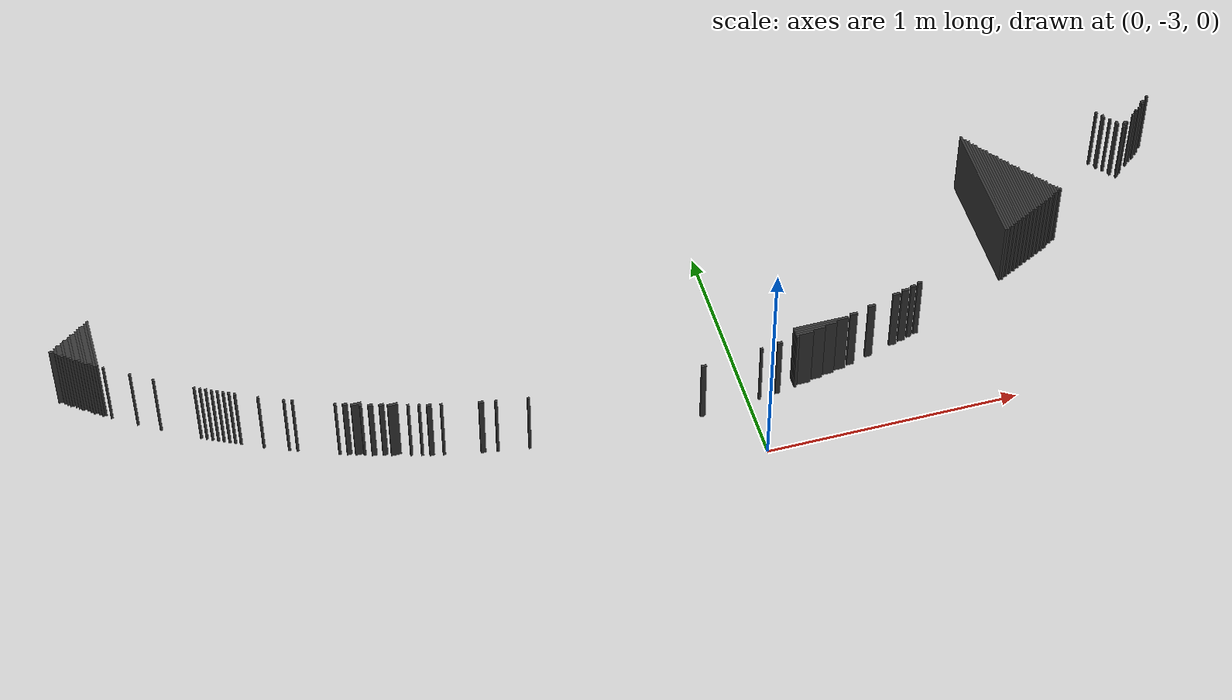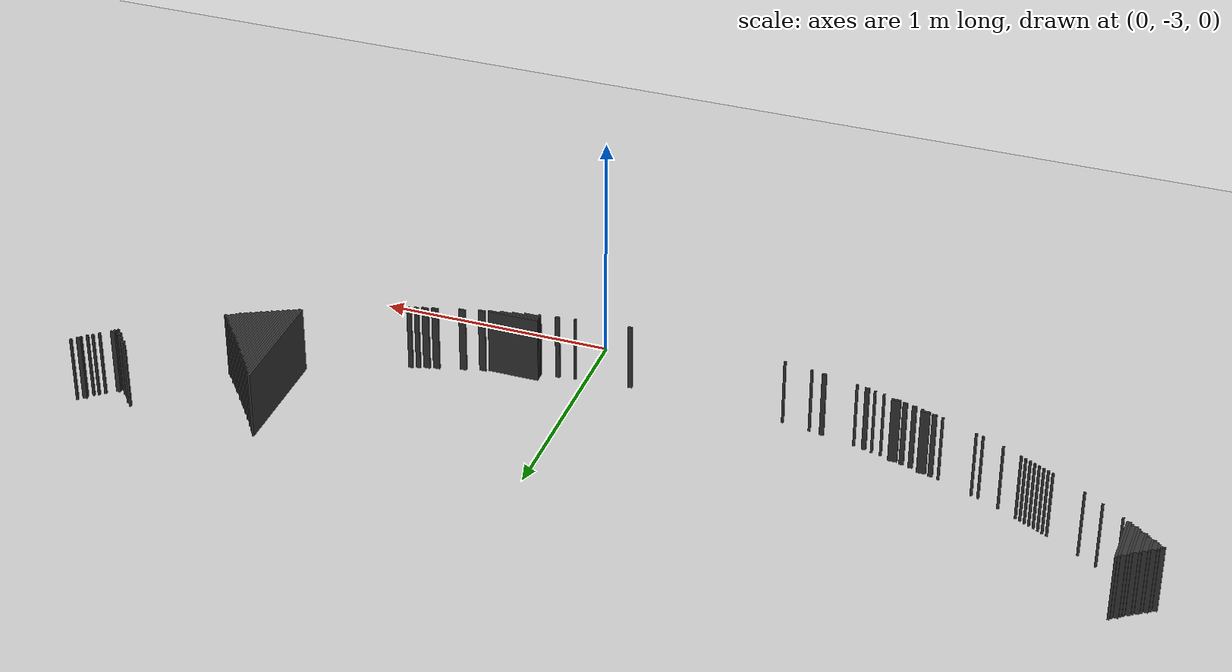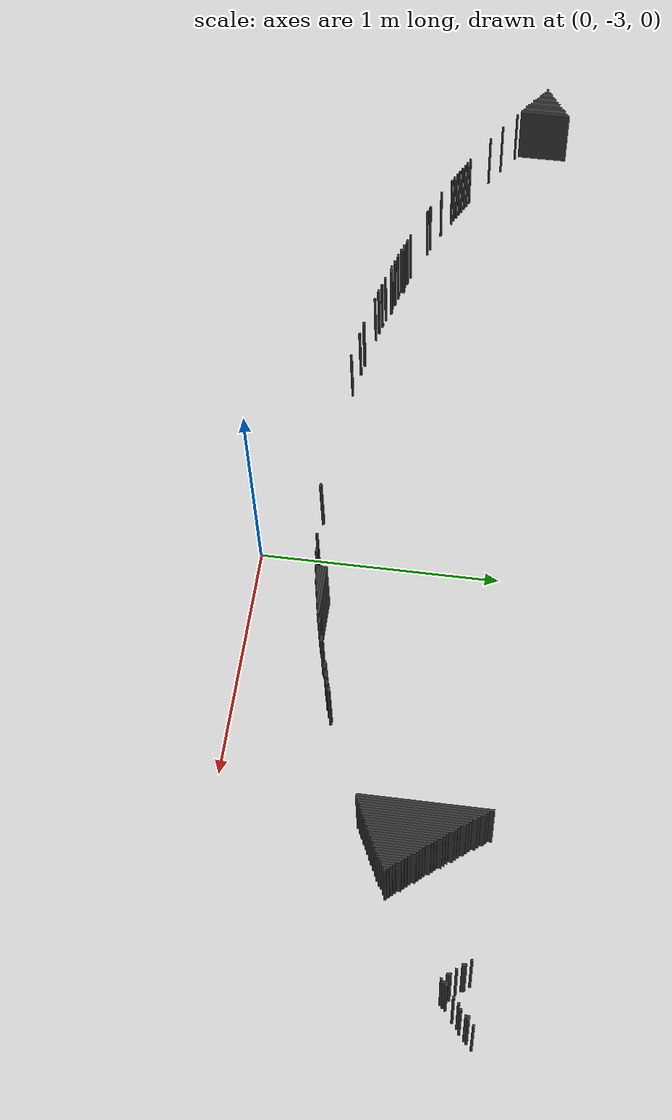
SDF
<sdf version="1.7">
 <world name="mapa_mundo">
  <model name="ground_plane">
   <static>true</static>
   <link name="link">
    <collision name="collision">
     <geometry><plane><normal>0 0 1</normal><size>10 10</size></plane></geometry>
     <surface><friction><ode><mu>100</mu><mu2>50</mu2></ode></friction></surface>
    </collision>
    <visual name="visual">
     <geometry><plane><normal>0 0 1</normal><size>10 10</size></plane></geometry>
     <material>
      <ambient>0.8 0.8 0.8 1</ambient>
      <diffuse>0.8 0.8 0.8 1</diffuse>
      <specular>0.8 0.8 0.8 1</specular>
     </material>
    </visual>
   </link>
  </model>
  <model name="wall_1099">
   <static>true</static>
   <link name="link">
    <collision name="collision"><geometry><box><size>0.01 0.01 0.3</size></box></geometry></collision>
    <visual name="visual">
     <geometry><box><size>0.01 0.01 0.3</size></box></geometry>
     <material><ambient>0.2 0.2 0.2 1</ambient><diffuse>0.2 0.2 0.2 1</diffuse></material>
    </visual>
    <pose>1.945 -1.905 0.15 0 0 0</pose>
   </link>
  </model>
  <model name="wall_1100">
   <static>true</static>
   <link name="link">
    <collision name="collision"><geometry><box><size>0.01 0.23 0.3</size></box></geometry></collision>
    <visual name="visual">
     <geometry><box><size>0.01 0.23 0.3</size></box></geometry>
     <material><ambient>0.2 0.2 0.2 1</ambient><diffuse>0.2 0.2 0.2 1</diffuse></material>
    </visual>
    <pose>-2.3850000000000002 -2.025 0.15 0 0 0</pose>
   </link>
  </model>
  <model name="wall_1101">
   <static>true</static>
   <link name="link">
    <collision name="collision"><geometry><box><size>0.01 0.52 0.3</size></box></geometry></collision>
    <visual name="visual">
     <geometry><box><size>0.01 0.52 0.3</size></box></geometry>
     <material><ambient>0.2 0.2 0.2 1</ambient><diffuse>0.2 0.2 0.2 1</diffuse></material>
    </visual>
    <pose>1.145 -2.17 0.15 0 0 0</pose>
   </link>
  </model>
  <model name="wall_1102">
   <static>true</static>
   <link name="link">
    <collision name="collision"><geometry><box><size>0.01 0.22 0.3</size></box></geometry></collision>
    <visual name="visual">
     <geometry><box><size>0.01 0.22 0.3</size></box></geometry>
     <material><ambient>0.2 0.2 0.2 1</ambient><diffuse>0.2 0.2 0.2 1</diffuse></material>
    </visual>
    <pose>-2.395 -2.0300000000000002 0.15 0 0 0</pose>
   </link>
  </model>
  <model name="wall_1103">
   <static>true</static>
   <link name="link">
    <collision name="collision"><geometry><box><size>0.02 0.01 0.3</size></box></geometry></collision>
    <visual name="visual">
     <geometry><box><size>0.02 0.01 0.3</size></box></geometry>
     <material><ambient>0.2 0.2 0.2 1</ambient><diffuse>0.2 0.2 0.2 1</diffuse></material>
    </visual>
    <pose>1.92 -1.925 0.15 0 0 0</pose>
   </link>
  </model>
  <model name="wall_1104">
   <static>true</static>
   <link name="link">
    <collision name="collision"><geometry><box><size>0.02 0.19 0.3</size></box></geometry></collision>
    <visual name="visual">
     <geometry><box><size>0.02 0.19 0.3</size></box></geometry>
     <material><ambient>0.2 0.2 0.2 1</ambient><diffuse>0.2 0.2 0.2 1</diffuse></material>
    </visual>
    <pose>-2.41 -2.025 0.15 0 0 0</pose>
   </link>
  </model>
  <model name="wall_1105">
   <static>true</static>
   <link name="link">
    <collision name="collision"><geometry><box><size>0.01 0.5 0.3</size></box></geometry></collision>
    <visual name="visual">
     <geometry><box><size>0.01 0.5 0.3</size></box></geometry>
     <material><ambient>0.2 0.2 0.2 1</ambient><diffuse>0.2 0.2 0.2 1</diffuse></material>
    </visual>
    <pose>1.155 -2.18 0.15 0 0 0</pose>
   </link>
  </model>
  <model name="wall_1106">
   <static>true</static>
   <link name="link">
    <collision name="collision"><geometry><box><size>0.01 0.01 0.3</size></box></geometry></collision>
    <visual name="visual">
     <geometry><box><size>0.01 0.01 0.3</size></box></geometry>
     <material><ambient>0.2 0.2 0.2 1</ambient><diffuse>0.2 0.2 0.2 1</diffuse></material>
    </visual>
    <pose>1.715 -1.935 0.15 0 0 0</pose>
   </link>
  </model>
  <model name="wall_1107">
   <static>true</static>
   <link name="link">
    <collision name="collision"><geometry><box><size>0.01 0.01 0.3</size></box></geometry></collision>
    <visual name="visual">
     <geometry><box><size>0.01 0.01 0.3</size></box></geometry>
     <material><ambient>0.2 0.2 0.2 1</ambient><diffuse>0.2 0.2 0.2 1</diffuse></material>
    </visual>
    <pose>1.915 -1.935 0.15 0 0 0</pose>
   </link>
  </model>
  <model name="wall_1108">
   <static>true</static>
   <link name="link">
    <collision name="collision"><geometry><box><size>0.01 0.18 0.3</size></box></geometry></collision>
    <visual name="visual">
     <geometry><box><size>0.01 0.18 0.3</size></box></geometry>
     <material><ambient>0.2 0.2 0.2 1</ambient><diffuse>0.2 0.2 0.2 1</diffuse></material>
    </visual>
    <pose>-2.4250000000000003 -2.0300000000000002 0.15 0 0 0</pose>
   </link>
  </model>
  <model name="wall_1109">
   <static>true</static>
   <link name="link">
    <collision name="collision"><geometry><box><size>0.01 0.48 0.3</size></box></geometry></collision>
    <visual name="visual">
     <geometry><box><size>0.01 0.48 0.3</size></box></geometry>
     <material><ambient>0.2 0.2 0.2 1</ambient><diffuse>0.2 0.2 0.2 1</diffuse></material>
    </visual>
    <pose>1.165 -2.18 0.15 0 0 0</pose>
   </link>
  </model>
  <model name="wall_1110">
   <static>true</static>
   <link name="link">
    <collision name="collision"><geometry><box><size>0.01 0.16 0.3</size></box></geometry></collision>
    <visual name="visual">
     <geometry><box><size>0.01 0.16 0.3</size></box></geometry>
     <material><ambient>0.2 0.2 0.2 1</ambient><diffuse>0.2 0.2 0.2 1</diffuse></material>
    </visual>
    <pose>-2.435 -2.0300000000000002 0.15 0 0 0</pose>
   </link>
  </model>
  <model name="wall_1111">
   <static>true</static>
   <link name="link">
    <collision name="collision"><geometry><box><size>0.01 0.02 0.3</size></box></geometry></collision>
    <visual name="visual">
     <geometry><box><size>0.01 0.02 0.3</size></box></geometry>
     <material><ambient>0.2 0.2 0.2 1</ambient><diffuse>0.2 0.2 0.2 1</diffuse></material>
    </visual>
    <pose>1.735 -1.96 0.15 0 0 0</pose>
   </link>
  </model>
  <model name="wall_1112">
   <static>true</static>
   <link name="link">
    <collision name="collision"><geometry><box><size>0.01 0.01 0.3</size></box></geometry></collision>
    <visual name="visual">
     <geometry><box><size>0.01 0.01 0.3</size></box></geometry>
     <material><ambient>0.2 0.2 0.2 1</ambient><diffuse>0.2 0.2 0.2 1</diffuse></material>
    </visual>
    <pose>1.895 -1.955 0.15 0 0 0</pose>
   </link>
  </model>
  <model name="wall_1113">
   <static>true</static>
   <link name="link">
    <collision name="collision"><geometry><box><size>0.02 0.13 0.3</size></box></geometry></collision>
    <visual name="visual">
     <geometry><box><size>0.02 0.13 0.3</size></box></geometry>
     <material><ambient>0.2 0.2 0.2 1</ambient><diffuse>0.2 0.2 0.2 1</diffuse></material>
    </visual>
    <pose>-2.45 -2.025 0.15 0 0 0</pose>
   </link>
  </model>
  <model name="wall_1114">
   <static>true</static>
   <link name="link">
    <collision name="collision"><geometry><box><size>0.01 0.46 0.3</size></box></geometry></collision>
    <visual name="visual">
     <geometry><box><size>0.01 0.46 0.3</size></box></geometry>
     <material><ambient>0.2 0.2 0.2 1</ambient><diffuse>0.2 0.2 0.2 1</diffuse></material>
    </visual>
    <pose>1.175 -2.19 0.15 0 0 0</pose>
   </link>
  </model>
  <model name="wall_1115">
   <static>true</static>
   <link name="link">
    <collision name="collision"><geometry><box><size>0.01 0.01 0.3</size></box></geometry></collision>
    <visual name="visual">
     <geometry><box><size>0.01 0.01 0.3</size></box></geometry>
     <material><ambient>0.2 0.2 0.2 1</ambient><diffuse>0.2 0.2 0.2 1</diffuse></material>
    </visual>
    <pose>1.875 -1.965 0.15 0 0 0</pose>
   </link>
  </model>
  <model name="wall_1116">
   <static>true</static>
   <link name="link">
    <collision name="collision"><geometry><box><size>0.01 0.12 0.3</size></box></geometry></collision>
    <visual name="visual">
     <geometry><box><size>0.01 0.12 0.3</size></box></geometry>
     <material><ambient>0.2 0.2 0.2 1</ambient><diffuse>0.2 0.2 0.2 1</diffuse></material>
    </visual>
    <pose>-2.465 -2.0300000000000002 0.15 0 0 0</pose>
   </link>
  </model>
  <model name="wall_1117">
   <static>true</static>
   <link name="link">
    <collision name="collision"><geometry><box><size>0.01 0.44 0.3</size></box></geometry></collision>
    <visual name="visual">
     <geometry><box><size>0.01 0.44 0.3</size></box></geometry>
     <material><ambient>0.2 0.2 0.2 1</ambient><diffuse>0.2 0.2 0.2 1</diffuse></material>
    </visual>
    <pose>1.185 -2.19 0.15 0 0 0</pose>
   </link>
  </model>
  <model name="wall_1118">
   <static>true</static>
   <link name="link">
    <collision name="collision"><geometry><box><size>0.02 0.09 0.3</size></box></geometry></collision>
    <visual name="visual">
     <geometry><box><size>0.02 0.09 0.3</size></box></geometry>
     <material><ambient>0.2 0.2 0.2 1</ambient><diffuse>0.2 0.2 0.2 1</diffuse></material>
    </visual>
    <pose>-2.48 -2.025 0.15 0 0 0</pose>
   </link>
  </model>
  <model name="wall_1119">
   <static>true</static>
   <link name="link">
    <collision name="collision"><geometry><box><size>0.01 0.01 0.3</size></box></geometry></collision>
    <visual name="visual">
     <geometry><box><size>0.01 0.01 0.3</size></box></geometry>
     <material><ambient>0.2 0.2 0.2 1</ambient><diffuse>0.2 0.2 0.2 1</diffuse></material>
    </visual>
    <pose>1.7550000000000001 -1.985 0.15 0 0 0</pose>
   </link>
  </model>
  <model name="wall_1120">
   <static>true</static>
   <link name="link">
    <collision name="collision"><geometry><box><size>0.01 0.01 0.3</size></box></geometry></collision>
    <visual name="visual">
     <geometry><box><size>0.01 0.01 0.3</size></box></geometry>
     <material><ambient>0.2 0.2 0.2 1</ambient><diffuse>0.2 0.2 0.2 1</diffuse></material>
    </visual>
    <pose>1.855 -1.985 0.15 0 0 0</pose>
   </link>
  </model>
  <model name="wall_1121">
   <static>true</static>
   <link name="link">
    <collision name="collision"><geometry><box><size>0.01 0.07 0.3</size></box></geometry></collision>
    <visual name="visual">
     <geometry><box><size>0.01 0.07 0.3</size></box></geometry>
     <material><ambient>0.2 0.2 0.2 1</ambient><diffuse>0.2 0.2 0.2 1</diffuse></material>
    </visual>
    <pose>-2.495 -2.025 0.15 0 0 0</pose>
   </link>
  </model>
  <model name="wall_1122">
   <static>true</static>
   <link name="link">
    <collision name="collision"><geometry><box><size>0.01 0.42 0.3</size></box></geometry></collision>
    <visual name="visual">
     <geometry><box><size>0.01 0.42 0.3</size></box></geometry>
     <material><ambient>0.2 0.2 0.2 1</ambient><diffuse>0.2 0.2 0.2 1</diffuse></material>
    </visual>
    <pose>1.195 -2.2 0.15 0 0 0</pose>
   </link>
  </model>
  <model name="wall_1123">
   <static>true</static>
   <link name="link">
    <collision name="collision"><geometry><box><size>0.02 0.05 0.3</size></box></geometry></collision>
    <visual name="visual">
     <geometry><box><size>0.02 0.05 0.3</size></box></geometry>
     <material><ambient>0.2 0.2 0.2 1</ambient><diffuse>0.2 0.2 0.2 1</diffuse></material>
    </visual>
    <pose>-2.5100000000000002 -2.025 0.15 0 0 0</pose>
   </link>
  </model>
  <model name="wall_1124">
   <static>true</static>
   <link name="link">
    <collision name="collision"><geometry><box><size>0.01 0.4 0.3</size></box></geometry></collision>
    <visual name="visual">
     <geometry><box><size>0.01 0.4 0.3</size></box></geometry>
     <material><ambient>0.2 0.2 0.2 1</ambient><diffuse>0.2 0.2 0.2 1</diffuse></material>
    </visual>
    <pose>1.205 -2.2 0.15 0 0 0</pose>
   </link>
  </model>
  <model name="wall_1125">
   <static>true</static>
   <link name="link">
    <collision name="collision"><geometry><box><size>0.01 0.02 0.3</size></box></geometry></collision>
    <visual name="visual">
     <geometry><box><size>0.01 0.02 0.3</size></box></geometry>
     <material><ambient>0.2 0.2 0.2 1</ambient><diffuse>0.2 0.2 0.2 1</diffuse></material>
    </visual>
    <pose>1.7750000000000001 -2.0100000000000002 0.15 0 0 0</pose>
   </link>
  </model>
  <model name="wall_1126">
   <static>true</static>
   <link name="link">
    <collision name="collision"><geometry><box><size>0.01 0.03 0.3</size></box></geometry></collision>
    <visual name="visual">
     <geometry><box><size>0.01 0.03 0.3</size></box></geometry>
     <material><ambient>0.2 0.2 0.2 1</ambient><diffuse>0.2 0.2 0.2 1</diffuse></material>
    </visual>
    <pose>-2.525 -2.025 0.15 0 0 0</pose>
   </link>
  </model>
  <model name="wall_1127">
   <static>true</static>
   <link name="link">
    <collision name="collision"><geometry><box><size>0.01 0.39 0.3</size></box></geometry></collision>
    <visual name="visual">
     <geometry><box><size>0.01 0.39 0.3</size></box></geometry>
     <material><ambient>0.2 0.2 0.2 1</ambient><diffuse>0.2 0.2 0.2 1</diffuse></material>
    </visual>
    <pose>1.215 -2.205 0.15 0 0 0</pose>
   </link>
  </model>
  <model name="wall_1128">
   <static>true</static>
   <link name="link">
    <collision name="collision"><geometry><box><size>0.02 0.01 0.3</size></box></geometry></collision>
    <visual name="visual">
     <geometry><box><size>0.02 0.01 0.3</size></box></geometry>
     <material><ambient>0.2 0.2 0.2 1</ambient><diffuse>0.2 0.2 0.2 1</diffuse></material>
    </visual>
    <pose>1.81 -2.015 0.15 0 0 0</pose>
   </link>
  </model>
  <model name="wall_1129">
   <static>true</static>
   <link name="link">
    <collision name="collision"><geometry><box><size>0.02 0.01 0.3</size></box></geometry></collision>
    <visual name="visual">
     <geometry><box><size>0.02 0.01 0.3</size></box></geometry>
     <material><ambient>0.2 0.2 0.2 1</ambient><diffuse>0.2 0.2 0.2 1</diffuse></material>
    </visual>
    <pose>-2.54 -2.025 0.15 0 0 0</pose>
   </link>
  </model>
  <model name="wall_1130">
   <static>true</static>
   <link name="link">
    <collision name="collision"><geometry><box><size>0.01 0.01 0.3</size></box></geometry></collision>
    <visual name="visual">
     <geometry><box><size>0.01 0.01 0.3</size></box></geometry>
     <material><ambient>0.2 0.2 0.2 1</ambient><diffuse>0.2 0.2 0.2 1</diffuse></material>
    </visual>
    <pose>1.805 -2.025 0.15 0 0 0</pose>
   </link>
  </model>
  <model name="wall_1131">
   <static>true</static>
   <link name="link">
    <collision name="collision"><geometry><box><size>0.01 0.36 0.3</size></box></geometry></collision>
    <visual name="visual">
     <geometry><box><size>0.01 0.36 0.3</size></box></geometry>
     <material><ambient>0.2 0.2 0.2 1</ambient><diffuse>0.2 0.2 0.2 1</diffuse></material>
    </visual>
    <pose>1.225 -2.21 0.15 0 0 0</pose>
   </link>
  </model>
  <model name="wall_1132">
   <static>true</static>
   <link name="link">
    <collision name="collision"><geometry><box><size>0.01 0.01 0.3</size></box></geometry></collision>
    <visual name="visual">
     <geometry><box><size>0.01 0.01 0.3</size></box></geometry>
     <material><ambient>0.2 0.2 0.2 1</ambient><diffuse>0.2 0.2 0.2 1</diffuse></material>
    </visual>
    <pose>1.795 -2.035 0.15 0 0 0</pose>
   </link>
  </model>
  <model name="wall_1133">
   <static>true</static>
   <link name="link">
    <collision name="collision">
     <geometry><box><size>0.01 0.35000000000000003 0.3</size></box></geometry>
    </collision>
    <visual name="visual">
     <geometry><box><size>0.01 0.35000000000000003 0.3</size></box></geometry>
     <material><ambient>0.2 0.2 0.2 1</ambient><diffuse>0.2 0.2 0.2 1</diffuse></material>
    </visual>
    <pose>1.235 -2.215 0.15 0 0 0</pose>
   </link>
  </model>
  <model name="wall_1134">
   <static>true</static>
   <link name="link">
    <collision name="collision"><geometry><box><size>0.01 0.01 0.3</size></box></geometry></collision>
    <visual name="visual">
     <geometry><box><size>0.01 0.01 0.3</size></box></geometry>
     <material><ambient>0.2 0.2 0.2 1</ambient><diffuse>0.2 0.2 0.2 1</diffuse></material>
    </visual>
    <pose>-2.505 -2.055 0.15 0 0 0</pose>
   </link>
  </model>
  <model name="wall_1135">
   <static>true</static>
   <link name="link">
    <collision name="collision"><geometry><box><size>0.01 0.33 0.3</size></box></geometry></collision>
    <visual name="visual">
     <geometry><box><size>0.01 0.33 0.3</size></box></geometry>
     <material><ambient>0.2 0.2 0.2 1</ambient><diffuse>0.2 0.2 0.2 1</diffuse></material>
    </visual>
    <pose>1.245 -2.215 0.15 0 0 0</pose>
   </link>
  </model>
  <model name="wall_1136">
   <static>true</static>
   <link name="link">
    <collision name="collision"><geometry><box><size>0.01 0.01 0.3</size></box></geometry></collision>
    <visual name="visual">
     <geometry><box><size>0.01 0.01 0.3</size></box></geometry>
     <material><ambient>0.2 0.2 0.2 1</ambient><diffuse>0.2 0.2 0.2 1</diffuse></material>
    </visual>
    <pose>-2.475 -2.075 0.15 0 0 0</pose>
   </link>
  </model>
  <model name="wall_1137">
   <static>true</static>
   <link name="link">
    <collision name="collision"><geometry><box><size>0.01 0.31 0.3</size></box></geometry></collision>
    <visual name="visual">
     <geometry><box><size>0.01 0.31 0.3</size></box></geometry>
     <material><ambient>0.2 0.2 0.2 1</ambient><diffuse>0.2 0.2 0.2 1</diffuse></material>
    </visual>
    <pose>1.2550000000000001 -2.225 0.15 0 0 0</pose>
   </link>
  </model>
  <model name="wall_1138">
   <static>true</static>
   <link name="link">
    <collision name="collision"><geometry><box><size>0.01 0.29 0.3</size></box></geometry></collision>
    <visual name="visual">
     <geometry><box><size>0.01 0.29 0.3</size></box></geometry>
     <material><ambient>0.2 0.2 0.2 1</ambient><diffuse>0.2 0.2 0.2 1</diffuse></material>
    </visual>
    <pose>1.2650000000000001 -2.225 0.15 0 0 0</pose>
   </link>
  </model>
  <model name="wall_1139">
   <static>true</static>
   <link name="link">
    <collision name="collision"><geometry><box><size>0.01 0.01 0.3</size></box></geometry></collision>
    <visual name="visual">
     <geometry><box><size>0.01 0.01 0.3</size></box></geometry>
     <material><ambient>0.2 0.2 0.2 1</ambient><diffuse>0.2 0.2 0.2 1</diffuse></material>
    </visual>
    <pose>-2.445 -2.095 0.15 0 0 0</pose>
   </link>
  </model>
  <model name="wall_1140">
   <static>true</static>
   <link name="link">
    <collision name="collision"><geometry><box><size>0.01 0.28 0.3</size></box></geometry></collision>
    <visual name="visual">
     <geometry><box><size>0.01 0.28 0.3</size></box></geometry>
     <material><ambient>0.2 0.2 0.2 1</ambient><diffuse>0.2 0.2 0.2 1</diffuse></material>
    </visual>
    <pose>1.2750000000000001 -2.23 0.15 0 0 0</pose>
   </link>
  </model>
  <model name="wall_1141">
   <static>true</static>
   <link name="link">
    <collision name="collision"><geometry><box><size>0.01 0.25 0.3</size></box></geometry></collision>
    <visual name="visual">
     <geometry><box><size>0.01 0.25 0.3</size></box></geometry>
     <material><ambient>0.2 0.2 0.2 1</ambient><diffuse>0.2 0.2 0.2 1</diffuse></material>
    </visual>
    <pose>1.285 -2.235 0.15 0 0 0</pose>
   </link>
  </model>
  <model name="wall_1142">
   <static>true</static>
   <link name="link">
    <collision name="collision"><geometry><box><size>0.01 0.01 0.3</size></box></geometry></collision>
    <visual name="visual">
     <geometry><box><size>0.01 0.01 0.3</size></box></geometry>
     <material><ambient>0.2 0.2 0.2 1</ambient><diffuse>0.2 0.2 0.2 1</diffuse></material>
    </visual>
    <pose>-2.4050000000000002 -2.125 0.15 0 0 0</pose>
   </link>
  </model>
  <model name="wall_1143">
   <static>true</static>
   <link name="link">
    <collision name="collision"><geometry><box><size>0.01 0.24 0.3</size></box></geometry></collision>
    <visual name="visual">
     <geometry><box><size>0.01 0.24 0.3</size></box></geometry>
     <material><ambient>0.2 0.2 0.2 1</ambient><diffuse>0.2 0.2 0.2 1</diffuse></material>
    </visual>
    <pose>1.295 -2.24 0.15 0 0 0</pose>
   </link>
  </model>
  <model name="wall_1144">
   <static>true</static>
   <link name="link">
    <collision name="collision"><geometry><box><size>0.01 0.22 0.3</size></box></geometry></collision>
    <visual name="visual">
     <geometry><box><size>0.01 0.22 0.3</size></box></geometry>
     <material><ambient>0.2 0.2 0.2 1</ambient><diffuse>0.2 0.2 0.2 1</diffuse></material>
    </visual>
    <pose>1.305 -2.24 0.15 0 0 0</pose>
   </link>
  </model>
  <model name="wall_1145">
   <static>true</static>
   <link name="link">
    <collision name="collision"><geometry><box><size>0.01 0.01 0.3</size></box></geometry></collision>
    <visual name="visual">
     <geometry><box><size>0.01 0.01 0.3</size></box></geometry>
     <material><ambient>0.2 0.2 0.2 1</ambient><diffuse>0.2 0.2 0.2 1</diffuse></material>
    </visual>
    <pose>-2.365 -2.1550000000000002 0.15 0 0 0</pose>
   </link>
  </model>
  <model name="wall_1146">
   <static>true</static>
   <link name="link">
    <collision name="collision"><geometry><box><size>0.01 0.2 0.3</size></box></geometry></collision>
    <visual name="visual">
     <geometry><box><size>0.01 0.2 0.3</size></box></geometry>
     <material><ambient>0.2 0.2 0.2 1</ambient><diffuse>0.2 0.2 0.2 1</diffuse></material>
    </visual>
    <pose>1.315 -2.25 0.15 0 0 0</pose>
   </link>
  </model>
  <model name="wall_1147">
   <static>true</static>
   <link name="link">
    <collision name="collision"><geometry><box><size>0.01 0.18 0.3</size></box></geometry></collision>
    <visual name="visual">
     <geometry><box><size>0.01 0.18 0.3</size></box></geometry>
     <material><ambient>0.2 0.2 0.2 1</ambient><diffuse>0.2 0.2 0.2 1</diffuse></material>
    </visual>
    <pose>1.325 -2.25 0.15 0 0 0</pose>
   </link>
  </model>
  <model name="wall_1148">
   <static>true</static>
   <link name="link">
    <collision name="collision"><geometry><box><size>0.01 0.17 0.3</size></box></geometry></collision>
    <visual name="visual">
     <geometry><box><size>0.01 0.17 0.3</size></box></geometry>
     <material><ambient>0.2 0.2 0.2 1</ambient><diffuse>0.2 0.2 0.2 1</diffuse></material>
    </visual>
    <pose>1.335 -2.255 0.15 0 0 0</pose>
   </link>
  </model>
  <model name="wall_1149">
   <static>true</static>
   <link name="link">
    <collision name="collision"><geometry><box><size>0.01 0.15 0.3</size></box></geometry></collision>
    <visual name="visual">
     <geometry><box><size>0.01 0.15 0.3</size></box></geometry>
     <material><ambient>0.2 0.2 0.2 1</ambient><diffuse>0.2 0.2 0.2 1</diffuse></material>
    </visual>
    <pose>1.345 -2.255 0.15 0 0 0</pose>
   </link>
  </model>
  <model name="wall_1150">
   <static>true</static>
   <link name="link">
    <collision name="collision"><geometry><box><size>0.01 0.13 0.3</size></box></geometry></collision>
    <visual name="visual">
     <geometry><box><size>0.01 0.13 0.3</size></box></geometry>
     <material><ambient>0.2 0.2 0.2 1</ambient><diffuse>0.2 0.2 0.2 1</diffuse></material>
    </visual>
    <pose>1.355 -2.265 0.15 0 0 0</pose>
   </link>
  </model>
  <model name="wall_1151">
   <static>true</static>
   <link name="link">
    <collision name="collision"><geometry><box><size>0.01 0.01 0.3</size></box></geometry></collision>
    <visual name="visual">
     <geometry><box><size>0.01 0.01 0.3</size></box></geometry>
     <material><ambient>0.2 0.2 0.2 1</ambient><diffuse>0.2 0.2 0.2 1</diffuse></material>
    </visual>
    <pose>-2.275 -2.215 0.15 0 0 0</pose>
   </link>
  </model>
  <model name="wall_1152">
   <static>true</static>
   <link name="link">
    <collision name="collision"><geometry><box><size>0.01 0.11 0.3</size></box></geometry></collision>
    <visual name="visual">
     <geometry><box><size>0.01 0.11 0.3</size></box></geometry>
     <material><ambient>0.2 0.2 0.2 1</ambient><diffuse>0.2 0.2 0.2 1</diffuse></material>
    </visual>
    <pose>1.365 -2.265 0.15 0 0 0</pose>
   </link>
  </model>
  <model name="wall_1153">
   <static>true</static>
   <link name="link">
    <collision name="collision"><geometry><box><size>0.01 0.1 0.3</size></box></geometry></collision>
    <visual name="visual">
     <geometry><box><size>0.01 0.1 0.3</size></box></geometry>
     <material><ambient>0.2 0.2 0.2 1</ambient><diffuse>0.2 0.2 0.2 1</diffuse></material>
    </visual>
    <pose>1.375 -2.27 0.15 0 0 0</pose>
   </link>
  </model>
  <model name="wall_1154">
   <static>true</static>
   <link name="link">
    <collision name="collision"><geometry><box><size>0.01 0.08 0.3</size></box></geometry></collision>
    <visual name="visual">
     <geometry><box><size>0.01 0.08 0.3</size></box></geometry>
     <material><ambient>0.2 0.2 0.2 1</ambient><diffuse>0.2 0.2 0.2 1</diffuse></material>
    </visual>
    <pose>1.385 -2.27 0.15 0 0 0</pose>
   </link>
  </model>
  <model name="wall_1155">
   <static>true</static>
   <link name="link">
    <collision name="collision"><geometry><box><size>0.01 0.05 0.3</size></box></geometry></collision>
    <visual name="visual">
     <geometry><box><size>0.01 0.05 0.3</size></box></geometry>
     <material><ambient>0.2 0.2 0.2 1</ambient><diffuse>0.2 0.2 0.2 1</diffuse></material>
    </visual>
    <pose>1.395 -2.275 0.15 0 0 0</pose>
   </link>
  </model>
  <model name="wall_1156">
   <static>true</static>
   <link name="link">
    <collision name="collision"><geometry><box><size>0.01 0.01 0.3</size></box></geometry></collision>
    <visual name="visual">
     <geometry><box><size>0.01 0.01 0.3</size></box></geometry>
     <material><ambient>0.2 0.2 0.2 1</ambient><diffuse>0.2 0.2 0.2 1</diffuse></material>
    </visual>
    <pose>-2.195 -2.265 0.15 0 0 0</pose>
   </link>
  </model>
  <model name="wall_1157">
   <static>true</static>
   <link name="link">
    <collision name="collision"><geometry><box><size>0.01 0.04 0.3</size></box></geometry></collision>
    <visual name="visual">
     <geometry><box><size>0.01 0.04 0.3</size></box></geometry>
     <material><ambient>0.2 0.2 0.2 1</ambient><diffuse>0.2 0.2 0.2 1</diffuse></material>
    </visual>
    <pose>1.405 -2.2800000000000002 0.15 0 0 0</pose>
   </link>
  </model>
  <model name="wall_1158">
   <static>true</static>
   <link name="link">
    <collision name="collision"><geometry><box><size>0.01 0.02 0.3</size></box></geometry></collision>
    <visual name="visual">
     <geometry><box><size>0.01 0.02 0.3</size></box></geometry>
     <material><ambient>0.2 0.2 0.2 1</ambient><diffuse>0.2 0.2 0.2 1</diffuse></material>
    </visual>
    <pose>1.415 -2.2800000000000002 0.15 0 0 0</pose>
   </link>
  </model>
  <model name="wall_1159">
   <static>true</static>
   <link name="link">
    <collision name="collision"><geometry><box><size>0.01 0.01 0.3</size></box></geometry></collision>
    <visual name="visual">
     <geometry><box><size>0.01 0.01 0.3</size></box></geometry>
     <material><ambient>0.2 0.2 0.2 1</ambient><diffuse>0.2 0.2 0.2 1</diffuse></material>
    </visual>
    <pose>1.425 -2.285 0.15 0 0 0</pose>
   </link>
  </model>
  <model name="wall_1160">
   <static>true</static>
   <link name="link">
    <collision name="collision"><geometry><box><size>0.01 0.01 0.3</size></box></geometry></collision>
    <visual name="visual">
     <geometry><box><size>0.01 0.01 0.3</size></box></geometry>
     <material><ambient>0.2 0.2 0.2 1</ambient><diffuse>0.2 0.2 0.2 1</diffuse></material>
    </visual>
    <pose>-2.055 -2.345 0.15 0 0 0</pose>
   </link>
  </model>
  <model name="wall_1161">
   <static>true</static>
   <link name="link">
    <collision name="collision"><geometry><box><size>0.01 0.01 0.3</size></box></geometry></collision>
    <visual name="visual">
     <geometry><box><size>0.01 0.01 0.3</size></box></geometry>
     <material><ambient>0.2 0.2 0.2 1</ambient><diffuse>0.2 0.2 0.2 1</diffuse></material>
    </visual>
    <pose>-2.035 -2.355 0.15 0 0 0</pose>
   </link>
  </model>
  <model name="wall_1162">
   <static>true</static>
   <link name="link">
    <collision name="collision"><geometry><box><size>0.01 0.01 0.3</size></box></geometry></collision>
    <visual name="visual">
     <geometry><box><size>0.01 0.01 0.3</size></box></geometry>
     <material><ambient>0.2 0.2 0.2 1</ambient><diffuse>0.2 0.2 0.2 1</diffuse></material>
    </visual>
    <pose>-2.015 -2.365 0.15 0 0 0</pose>
   </link>
  </model>
  <model name="wall_1163">
   <static>true</static>
   <link name="link">
    <collision name="collision"><geometry><box><size>0.01 0.01 0.3</size></box></geometry></collision>
    <visual name="visual">
     <geometry><box><size>0.01 0.01 0.3</size></box></geometry>
     <material><ambient>0.2 0.2 0.2 1</ambient><diffuse>0.2 0.2 0.2 1</diffuse></material>
    </visual>
    <pose>-1.995 -2.375 0.15 0 0 0</pose>
   </link>
  </model>
  <model name="wall_1164">
   <static>true</static>
   <link name="link">
    <collision name="collision"><geometry><box><size>0.01 0.01 0.3</size></box></geometry></collision>
    <visual name="visual">
     <geometry><box><size>0.01 0.01 0.3</size></box></geometry>
     <material><ambient>0.2 0.2 0.2 1</ambient><diffuse>0.2 0.2 0.2 1</diffuse></material>
    </visual>
    <pose>-1.975 -2.3850000000000002 0.15 0 0 0</pose>
   </link>
  </model>
  <model name="wall_1165">
   <static>true</static>
   <link name="link">
    <collision name="collision"><geometry><box><size>0.01 0.01 0.3</size></box></geometry></collision>
    <visual name="visual">
     <geometry><box><size>0.01 0.01 0.3</size></box></geometry>
     <material><ambient>0.2 0.2 0.2 1</ambient><diffuse>0.2 0.2 0.2 1</diffuse></material>
    </visual>
    <pose>-1.955 -2.395 0.15 0 0 0</pose>
   </link>
  </model>
  <model name="wall_1166">
   <static>true</static>
   <link name="link">
    <collision name="collision"><geometry><box><size>0.01 0.01 0.3</size></box></geometry></collision>
    <visual name="visual">
     <geometry><box><size>0.01 0.01 0.3</size></box></geometry>
     <material><ambient>0.2 0.2 0.2 1</ambient><diffuse>0.2 0.2 0.2 1</diffuse></material>
    </visual>
    <pose>-1.935 -2.4050000000000002 0.15 0 0 0</pose>
   </link>
  </model>
  <model name="wall_1167">
   <static>true</static>
   <link name="link">
    <collision name="collision"><geometry><box><size>0.01 0.01 0.3</size></box></geometry></collision>
    <visual name="visual">
     <geometry><box><size>0.01 0.01 0.3</size></box></geometry>
     <material><ambient>0.2 0.2 0.2 1</ambient><diffuse>0.2 0.2 0.2 1</diffuse></material>
    </visual>
    <pose>-1.915 -2.415 0.15 0 0 0</pose>
   </link>
  </model>
  <model name="wall_1168">
   <static>true</static>
   <link name="link">
    <collision name="collision"><geometry><box><size>0.01 0.01 0.3</size></box></geometry></collision>
    <visual name="visual">
     <geometry><box><size>0.01 0.01 0.3</size></box></geometry>
     <material><ambient>0.2 0.2 0.2 1</ambient><diffuse>0.2 0.2 0.2 1</diffuse></material>
    </visual>
    <pose>-1.835 -2.455 0.15 0 0 0</pose>
   </link>
  </model>
  <model name="wall_1169">
   <static>true</static>
   <link name="link">
    <collision name="collision"><geometry><box><size>0.01 0.01 0.3</size></box></geometry></collision>
    <visual name="visual">
     <geometry><box><size>0.01 0.01 0.3</size></box></geometry>
     <material><ambient>0.2 0.2 0.2 1</ambient><diffuse>0.2 0.2 0.2 1</diffuse></material>
    </visual>
    <pose>-1.745 -2.495 0.15 0 0 0</pose>
   </link>
  </model>
  <model name="wall_1170">
   <static>true</static>
   <link name="link">
    <collision name="collision"><geometry><box><size>0.01 0.01 0.3</size></box></geometry></collision>
    <visual name="visual">
     <geometry><box><size>0.01 0.01 0.3</size></box></geometry>
     <material><ambient>0.2 0.2 0.2 1</ambient><diffuse>0.2 0.2 0.2 1</diffuse></material>
    </visual>
    <pose>-1.715 -2.505 0.15 0 0 0</pose>
   </link>
  </model>
  <model name="wall_1171">
   <static>true</static>
   <link name="link">
    <collision name="collision"><geometry><box><size>0.01 0.01 0.3</size></box></geometry></collision>
    <visual name="visual">
     <geometry><box><size>0.01 0.01 0.3</size></box></geometry>
     <material><ambient>0.2 0.2 0.2 1</ambient><diffuse>0.2 0.2 0.2 1</diffuse></material>
    </visual>
    <pose>-1.565 -2.565 0.15 0 0 0</pose>
   </link>
  </model>
  <model name="wall_1172">
   <static>true</static>
   <link name="link">
    <collision name="collision"><geometry><box><size>0.02 0.01 0.3</size></box></geometry></collision>
    <visual name="visual">
     <geometry><box><size>0.02 0.01 0.3</size></box></geometry>
     <material><ambient>0.2 0.2 0.2 1</ambient><diffuse>0.2 0.2 0.2 1</diffuse></material>
    </visual>
    <pose>-1.53 -2.575 0.15 0 0 0</pose>
   </link>
  </model>
  <model name="wall_1173">
   <static>true</static>
   <link name="link">
    <collision name="collision"><geometry><box><size>0.04 0.01 0.3</size></box></geometry></collision>
    <visual name="visual">
     <geometry><box><size>0.04 0.01 0.3</size></box></geometry>
     <material><ambient>0.2 0.2 0.2 1</ambient><diffuse>0.2 0.2 0.2 1</diffuse></material>
    </visual>
    <pose>-1.49 -2.585 0.15 0 0 0</pose>
   </link>
  </model>
  <model name="wall_1174">
   <static>true</static>
   <link name="link">
    <collision name="collision"><geometry><box><size>0.01 0.01 0.3</size></box></geometry></collision>
    <visual name="visual">
     <geometry><box><size>0.01 0.01 0.3</size></box></geometry>
     <material><ambient>0.2 0.2 0.2 1</ambient><diffuse>0.2 0.2 0.2 1</diffuse></material>
    </visual>
    <pose>-1.475 -2.595 0.15 0 0 0</pose>
   </link>
  </model>
  <model name="wall_1175">
   <static>true</static>
   <link name="link">
    <collision name="collision"><geometry><box><size>0.02 0.01 0.3</size></box></geometry></collision>
    <visual name="visual">
     <geometry><box><size>0.02 0.01 0.3</size></box></geometry>
     <material><ambient>0.2 0.2 0.2 1</ambient><diffuse>0.2 0.2 0.2 1</diffuse></material>
    </visual>
    <pose>0.73 -2.595 0.15 0 0 0</pose>
   </link>
  </model>
  <model name="wall_1176">
   <static>true</static>
   <link name="link">
    <collision name="collision"><geometry><box><size>0.02 0.01 0.3</size></box></geometry></collision>
    <visual name="visual">
     <geometry><box><size>0.02 0.01 0.3</size></box></geometry>
     <material><ambient>0.2 0.2 0.2 1</ambient><diffuse>0.2 0.2 0.2 1</diffuse></material>
    </visual>
    <pose>-1.44 -2.605 0.15 0 0 0</pose>
   </link>
  </model>
  <model name="wall_1177">
   <static>true</static>
   <link name="link">
    <collision name="collision"><geometry><box><size>0.02 0.01 0.3</size></box></geometry></collision>
    <visual name="visual">
     <geometry><box><size>0.02 0.01 0.3</size></box></geometry>
     <material><ambient>0.2 0.2 0.2 1</ambient><diffuse>0.2 0.2 0.2 1</diffuse></material>
    </visual>
    <pose>0.7000000000000001 -2.605 0.15 0 0 0</pose>
   </link>
  </model>
  <model name="wall_1178">
   <static>true</static>
   <link name="link">
    <collision name="collision"><geometry><box><size>0.02 0.01 0.3</size></box></geometry></collision>
    <visual name="visual">
     <geometry><box><size>0.02 0.01 0.3</size></box></geometry>
     <material><ambient>0.2 0.2 0.2 1</ambient><diffuse>0.2 0.2 0.2 1</diffuse></material>
    </visual>
    <pose>-1.4000000000000001 -2.615 0.15 0 0 0</pose>
   </link>
  </model>
  <model name="wall_1179">
   <static>true</static>
   <link name="link">
    <collision name="collision"><geometry><box><size>0.03 0.01 0.3</size></box></geometry></collision>
    <visual name="visual">
     <geometry><box><size>0.03 0.01 0.3</size></box></geometry>
     <material><ambient>0.2 0.2 0.2 1</ambient><diffuse>0.2 0.2 0.2 1</diffuse></material>
    </visual>
    <pose>0.665 -2.615 0.15 0 0 0</pose>
   </link>
  </model>
  <model name="wall_1180">
   <static>true</static>
   <link name="link">
    <collision name="collision"><geometry><box><size>0.04 0.01 0.3</size></box></geometry></collision>
    <visual name="visual">
     <geometry><box><size>0.04 0.01 0.3</size></box></geometry>
     <material><ambient>0.2 0.2 0.2 1</ambient><diffuse>0.2 0.2 0.2 1</diffuse></material>
    </visual>
    <pose>-1.36 -2.625 0.15 0 0 0</pose>
   </link>
  </model>
  <model name="wall_1181">
   <static>true</static>
   <link name="link">
    <collision name="collision"><geometry><box><size>0.03 0.01 0.3</size></box></geometry></collision>
    <visual name="visual">
     <geometry><box><size>0.03 0.01 0.3</size></box></geometry>
     <material><ambient>0.2 0.2 0.2 1</ambient><diffuse>0.2 0.2 0.2 1</diffuse></material>
    </visual>
    <pose>0.625 -2.625 0.15 0 0 0</pose>
   </link>
  </model>
  <model name="wall_1182">
   <static>true</static>
   <link name="link">
    <collision name="collision"><geometry><box><size>0.01 0.01 0.3</size></box></geometry></collision>
    <visual name="visual">
     <geometry><box><size>0.01 0.01 0.3</size></box></geometry>
     <material><ambient>0.2 0.2 0.2 1</ambient><diffuse>0.2 0.2 0.2 1</diffuse></material>
    </visual>
    <pose>-1.305 -2.645 0.15 0 0 0</pose>
   </link>
  </model>
  <model name="wall_1183">
   <static>true</static>
   <link name="link">
    <collision name="collision"><geometry><box><size>0.01 0.01 0.3</size></box></geometry></collision>
    <visual name="visual">
     <geometry><box><size>0.01 0.01 0.3</size></box></geometry>
     <material><ambient>0.2 0.2 0.2 1</ambient><diffuse>0.2 0.2 0.2 1</diffuse></material>
    </visual>
    <pose>-1.2650000000000001 -2.6550000000000002 0.15 0 0 0</pose>
   </link>
  </model>
  <model name="wall_1184">
   <static>true</static>
   <link name="link">
    <collision name="collision"><geometry><box><size>0.03 0.01 0.3</size></box></geometry></collision>
    <visual name="visual">
     <geometry><box><size>0.03 0.01 0.3</size></box></geometry>
     <material><ambient>0.2 0.2 0.2 1</ambient><diffuse>0.2 0.2 0.2 1</diffuse></material>
    </visual>
    <pose>0.515 -2.6550000000000002 0.15 0 0 0</pose>
   </link>
  </model>
  <model name="wall_1185">
   <static>true</static>
   <link name="link">
    <collision name="collision"><geometry><box><size>0.02 0.01 0.3</size></box></geometry></collision>
    <visual name="visual">
     <geometry><box><size>0.02 0.01 0.3</size></box></geometry>
     <material><ambient>0.2 0.2 0.2 1</ambient><diffuse>0.2 0.2 0.2 1</diffuse></material>
    </visual>
    <pose>-1.23 -2.665 0.15 0 0 0</pose>
   </link>
  </model>
  <model name="wall_1186">
   <static>true</static>
   <link name="link">
    <collision name="collision"><geometry><box><size>0.01 0.01 0.3</size></box></geometry></collision>
    <visual name="visual">
     <geometry><box><size>0.01 0.01 0.3</size></box></geometry>
     <material><ambient>0.2 0.2 0.2 1</ambient><diffuse>0.2 0.2 0.2 1</diffuse></material>
    </visual>
    <pose>-1.185 -2.6750000000000003 0.15 0 0 0</pose>
   </link>
  </model>
  <model name="wall_1187">
   <static>true</static>
   <link name="link">
    <collision name="collision"><geometry><box><size>0.03 0.01 0.3</size></box></geometry></collision>
    <visual name="visual">
     <geometry><box><size>0.03 0.01 0.3</size></box></geometry>
     <material><ambient>0.2 0.2 0.2 1</ambient><diffuse>0.2 0.2 0.2 1</diffuse></material>
    </visual>
    <pose>0.435 -2.6750000000000003 0.15 0 0 0</pose>
   </link>
  </model>
  <model name="wall_1188">
   <static>true</static>
   <link name="link">
    <collision name="collision"><geometry><box><size>0.22 0.01 0.3</size></box></geometry></collision>
    <visual name="visual">
     <geometry><box><size>0.22 0.01 0.3</size></box></geometry>
     <material><ambient>0.2 0.2 0.2 1</ambient><diffuse>0.2 0.2 0.2 1</diffuse></material>
    </visual>
    <pose>0.3 -2.685 0.15 0 0 0</pose>
   </link>
  </model>
  <model name="wall_1189">
   <static>true</static>
   <link name="link">
    <collision name="collision"><geometry><box><size>0.17 0.01 0.3</size></box></geometry></collision>
    <visual name="visual">
     <geometry><box><size>0.17 0.01 0.3</size></box></geometry>
     <material><ambient>0.2 0.2 0.2 1</ambient><diffuse>0.2 0.2 0.2 1</diffuse></material>
    </visual>
    <pose>0.275 -2.695 0.15 0 0 0</pose>
   </link>
  </model>
  <model name="wall_1190">
   <static>true</static>
   <link name="link">
    <collision name="collision"><geometry><box><size>0.02 0.01 0.3</size></box></geometry></collision>
    <visual name="visual">
     <geometry><box><size>0.02 0.01 0.3</size></box></geometry>
     <material><ambient>0.2 0.2 0.2 1</ambient><diffuse>0.2 0.2 0.2 1</diffuse></material>
    </visual>
    <pose>-1.04 -2.705 0.15 0 0 0</pose>
   </link>
  </model>
  <model name="wall_1191">
   <static>true</static>
   <link name="link">
    <collision name="collision"><geometry><box><size>0.12 0.01 0.3</size></box></geometry></collision>
    <visual name="visual">
     <geometry><box><size>0.12 0.01 0.3</size></box></geometry>
     <material><ambient>0.2 0.2 0.2 1</ambient><diffuse>0.2 0.2 0.2 1</diffuse></material>
    </visual>
    <pose>0.25 -2.705 0.15 0 0 0</pose>
   </link>
  </model>
  <model name="wall_1192">
   <static>true</static>
   <link name="link">
    <collision name="collision"><geometry><box><size>0.01 0.01 0.3</size></box></geometry></collision>
    <visual name="visual">
     <geometry><box><size>0.01 0.01 0.3</size></box></geometry>
     <material><ambient>0.2 0.2 0.2 1</ambient><diffuse>0.2 0.2 0.2 1</diffuse></material>
    </visual>
    <pose>-0.985 -2.715 0.15 0 0 0</pose>
   </link>
  </model>
  <model name="wall_1193">
   <static>true</static>
   <link name="link">
    <collision name="collision"><geometry><box><size>0.07 0.01 0.3</size></box></geometry></collision>
    <visual name="visual">
     <geometry><box><size>0.07 0.01 0.3</size></box></geometry>
     <material><ambient>0.2 0.2 0.2 1</ambient><diffuse>0.2 0.2 0.2 1</diffuse></material>
    </visual>
    <pose>0.225 -2.715 0.15 0 0 0</pose>
   </link>
  </model>
  <model name="wall_1194">
   <static>true</static>
   <link name="link">
    <collision name="collision"><geometry><box><size>0.01 0.01 0.3</size></box></geometry></collision>
    <visual name="visual">
     <geometry><box><size>0.01 0.01 0.3</size></box></geometry>
     <material><ambient>0.2 0.2 0.2 1</ambient><diffuse>0.2 0.2 0.2 1</diffuse></material>
    </visual>
    <pose>0.195 -2.725 0.15 0 0 0</pose>
   </link>
  </model>
  <model name="wall_1195">
   <static>true</static>
   <link name="link">
    <collision name="collision"><geometry><box><size>0.01 0.01 0.3</size></box></geometry></collision>
    <visual name="visual">
     <geometry><box><size>0.01 0.01 0.3</size></box></geometry>
     <material><ambient>0.2 0.2 0.2 1</ambient><diffuse>0.2 0.2 0.2 1</diffuse></material>
    </visual>
    <pose>-0.865 -2.735 0.15 0 0 0</pose>
   </link>
  </model>
  <model name="wall_1196">
   <static>true</static>
   <link name="link">
    <collision name="collision"><geometry><box><size>0.02 0.01 0.3</size></box></geometry></collision>
    <visual name="visual">
     <geometry><box><size>0.02 0.01 0.3</size></box></geometry>
     <material><ambient>0.2 0.2 0.2 1</ambient><diffuse>0.2 0.2 0.2 1</diffuse></material>
    </visual>
    <pose>0.12 -2.735 0.15 0 0 0</pose>
   </link>
  </model>
  <model name="wall_1197">
   <static>true</static>
   <link name="link">
    <collision name="collision"><geometry><box><size>0.01 0.01 0.3</size></box></geometry></collision>
    <visual name="visual">
     <geometry><box><size>0.01 0.01 0.3</size></box></geometry>
     <material><ambient>0.2 0.2 0.2 1</ambient><diffuse>0.2 0.2 0.2 1</diffuse></material>
    </visual>
    <pose>0.045 -2.745 0.15 0 0 0</pose>
   </link>
  </model>
  <model name="wall_1198">
   <static>true</static>
   <link name="link">
    <collision name="collision"><geometry><box><size>0.02 0.01 0.3</size></box></geometry></collision>
    <visual name="visual">
     <geometry><box><size>0.02 0.01 0.3</size></box></geometry>
     <material><ambient>0.2 0.2 0.2 1</ambient><diffuse>0.2 0.2 0.2 1</diffuse></material>
    </visual>
    <pose>-0.19 -2.765 0.15 0 0 0</pose>
   </link>
  </model>
 </world>
</sdf>
